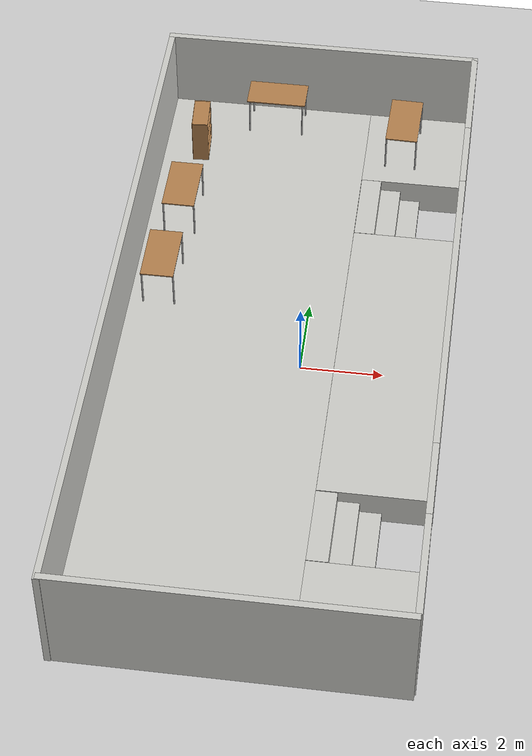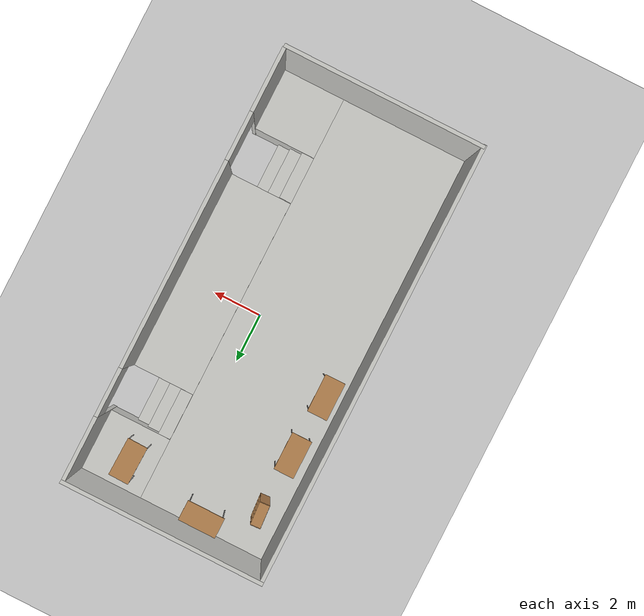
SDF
<sdf version="1.7">
 <world name="default">
  <model name="ground_plane">
   <static>1</static>
   <link name="link">
    <collision name="collision">
     <geometry><plane><normal>0 0 1</normal><size>100 100</size></plane></geometry>
     <surface>
      <contact><collide_bitmask>65535</collide_bitmask></contact>
      <friction><ode><mu>100</mu><mu2>50</mu2></ode></friction>
     </surface>
    </collision>
    <visual name="visual">
     <cast_shadows>0</cast_shadows>
     <geometry><plane><normal>0 0 1</normal><size>100 100</size></plane></geometry>
     <material>
      <script><uri>file://media/materials/scripts/gazebo.material</uri><name>Gazebo/Grey</name></script>
     </material>
    </visual>
   </link>
  </model>
  <model name="big_lab_final">
   <pose>-0.447877 -0.273393 0 0 -0 0</pose>
   <link name="Stairs_1">
    <visual name="Stairs_1_Visual_0">
     <pose>2.56912 -5.01602 0.15 0 -0 -1.5708</pose>
     <geometry><box><size>1.91 0.5 0.3</size></box></geometry>
     <material>
      <script><uri>file://media/materials/scripts/gazebo.material</uri><name>Gazebo/CeilingTiled</name></script>
      <ambient>0.333333 0.341176 0.32549 1</ambient>
     </material>
     <meta><layer>0</layer></meta>
    </visual>
    <collision name="Stairs_1_Collision_0">
     <geometry><box><size>1.91 0.5 0.3</size></box></geometry>
     <pose>2.56912 -5.01602 0.15 0 -0 -1.5708</pose>
    </collision>
    <visual name="Stairs_1_Visual_1">
     <pose>2.06912 -5.01602 0.45 0 -0 -1.5708</pose>
     <geometry><box><size>1.91 0.5 0.3</size></box></geometry>
     <material>
      <script><uri>file://media/materials/scripts/gazebo.material</uri><name>Gazebo/CeilingTiled</name></script>
      <ambient>0.333333 0.341176 0.32549 1</ambient>
     </material>
     <meta><layer>0</layer></meta>
    </visual>
    <collision name="Stairs_1_Collision_1">
     <geometry><box><size>1.91 0.5 0.3</size></box></geometry>
     <pose>2.06912 -5.01602 0.45 0 -0 -1.5708</pose>
    </collision>
    <visual name="Stairs_1_Visual_2">
     <pose>1.56912 -5.01602 0.75 0 -0 -1.5708</pose>
     <geometry><box><size>1.91 0.5 0.3</size></box></geometry>
     <material>
      <script><uri>file://media/materials/scripts/gazebo.material</uri><name>Gazebo/CeilingTiled</name></script>
      <ambient>0.333333 0.341176 0.32549 1</ambient>
     </material>
     <meta><layer>0</layer></meta>
    </visual>
    <collision name="Stairs_1_Collision_2">
     <geometry><box><size>1.91 0.5 0.3</size></box></geometry>
     <pose>1.56912 -5.01602 0.75 0 -0 -1.5708</pose>
    </collision>
   </link>
   <link name="Stairs_3">
    <visual name="Stairs_3_Visual_0">
     <pose>2.58039 5.06228 0.15 0 0 -1.5708</pose>
     <geometry><box><size>1.91 0.5 0.3</size></box></geometry>
     <material>
      <script><uri>file://media/materials/scripts/gazebo.material</uri><name>Gazebo/CeilingTiled</name></script>
      <ambient>0.333333 0.341176 0.32549 1</ambient>
     </material>
     <meta><layer>0</layer></meta>
    </visual>
    <collision name="Stairs_3_Collision_0">
     <geometry><box><size>1.91 0.5 0.3</size></box></geometry>
     <pose>2.58039 5.06228 0.15 0 0 -1.5708</pose>
    </collision>
    <visual name="Stairs_3_Visual_1">
     <pose>2.08039 5.06228 0.45 0 0 -1.5708</pose>
     <geometry><box><size>1.91 0.5 0.3</size></box></geometry>
     <material>
      <script><uri>file://media/materials/scripts/gazebo.material</uri><name>Gazebo/CeilingTiled</name></script>
      <ambient>0.333333 0.341176 0.32549 1</ambient>
     </material>
     <meta><layer>0</layer></meta>
    </visual>
    <collision name="Stairs_3_Collision_1">
     <geometry><box><size>1.91 0.5 0.3</size></box></geometry>
     <pose>2.08039 5.06228 0.45 0 0 -1.5708</pose>
    </collision>
    <visual name="Stairs_3_Visual_2">
     <pose>1.58039 5.06228 0.75 0 0 -1.5708</pose>
     <geometry><box><size>1.91 0.5 0.3</size></box></geometry>
     <material>
      <script><uri>file://media/materials/scripts/gazebo.material</uri><name>Gazebo/CeilingTiled</name></script>
      <ambient>0.333333 0.341176 0.32549 1</ambient>
     </material>
     <meta><layer>0</layer></meta>
    </visual>
    <collision name="Stairs_3_Collision_2">
     <geometry><box><size>1.91 0.5 0.3</size></box></geometry>
     <pose>1.58039 5.06228 0.75 0 0 -1.5708</pose>
    </collision>
   </link>
   <link name="Wall_0">
    <collision name="Wall_0_Collision">
     <geometry><box><size>17 5.15 0.9</size></box></geometry>
     <pose>0 0 0.45 0 -0 0</pose>
    </collision>
    <visual name="Wall_0_Visual">
     <pose>0 0 0.45 0 -0 0</pose>
     <geometry><box><size>17 5.15 0.9</size></box></geometry>
     <material>
      <script><uri>file://media/materials/scripts/gazebo.material</uri><name>Gazebo/CeilingTiled</name></script>
      <ambient>0.333333 0.341176 0.32549 1</ambient>
     </material>
     <meta><layer>0</layer></meta>
    </visual>
    <pose>-1.2516 0.017055 0 0 -0 -1.5708</pose>
   </link>
   <link name="Wall_11">
    <collision name="Wall_11_Collision">
     <geometry><box><size>7.875 0.15 3</size></box></geometry>
     <pose>0 0 1.5 0 -0 0</pose>
    </collision>
    <visual name="Wall_11_Visual">
     <pose>0 0 1.5 0 -0 0</pose>
     <geometry><box><size>7.875 0.15 3</size></box></geometry>
     <material>
      <script><uri>file://media/materials/scripts/gazebo.material</uri><name>Gazebo/CeilingTiled</name></script>
      <ambient>1 1 1 1</ambient>
     </material>
     <meta><layer>0</layer></meta>
    </visual>
    <pose>0.0055 -8.555 0 0 -0 0</pose>
   </link>
   <link name="Wall_13">
    <collision name="Wall_13_Collision">
     <geometry><box><size>7.95 0.15 3</size></box></geometry>
     <pose>0 0 1.5 0 -0 0</pose>
    </collision>
    <visual name="Wall_13_Visual">
     <pose>0 0 1.5 0 -0 0</pose>
     <geometry><box><size>7.95 0.15 3</size></box></geometry>
     <material>
      <script><uri>file://media/materials/scripts/gazebo.material</uri><name>Gazebo/CeilingTiled</name></script>
      <ambient>1 1 1 1</ambient>
     </material>
     <meta><layer>0</layer></meta>
    </visual>
    <pose>0 8.568 0 0 -0 3.14159</pose>
   </link>
   <link name="Wall_16">
    <collision name="Wall_16_Collision">
     <geometry><box><size>17.15 0.15 3</size></box></geometry>
     <pose>0 0 1.5 0 -0 0</pose>
    </collision>
    <visual name="Wall_16_Visual">
     <pose>0 0 1.5 0 -0 0</pose>
     <geometry><box><size>17.15 0.15 3</size></box></geometry>
     <material>
      <script><uri>file://media/materials/scripts/gazebo.material</uri><name>Gazebo/CeilingTiled</name></script>
      <ambient>1 1 1 1</ambient>
     </material>
     <meta><layer>0</layer></meta>
    </visual>
    <pose>-3.896 -0.07 0 0 -0 1.5708</pose>
   </link>
   <link name="Wall_18">
    <pose>3.898 0.07 0 0 -0 -1.5708</pose>
    <visual name="Wall_18_Visual_0">
     <pose>-7.25268 0 1.5 0 -0 0</pose>
     <geometry><box><size>2.64463 0.15 3</size></box></geometry>
     <material>
      <script><uri>file://media/materials/scripts/gazebo.material</uri><name>Gazebo/CeilingTiled</name></script>
      <ambient>1 1 1 1</ambient>
     </material>
     <meta><layer>0</layer></meta>
    </visual>
    <collision name="Wall_18_Collision_0">
     <geometry><box><size>2.64463 0.15 3</size></box></geometry>
     <pose>-7.25268 0 1.5 0 -0 0</pose>
    </collision>
    <visual name="Wall_18_Visual_1">
     <pose>0.054632 0 1.5 0 -0 0</pose>
     <geometry><box><size>8.15 0.15 3</size></box></geometry>
     <material>
      <script><uri>file://media/materials/scripts/gazebo.material</uri><name>Gazebo/CeilingTiled</name></script>
      <ambient>1 1 1 1</ambient>
     </material>
     <meta><layer>0</layer></meta>
    </visual>
    <collision name="Wall_18_Collision_1">
     <geometry><box><size>8.15 0.15 3</size></box></geometry>
     <pose>0.054632 0 1.5 0 -0 0</pose>
    </collision>
    <visual name="Wall_18_Visual_2">
     <pose>7.30732 0 1.5 0 -0 0</pose>
     <geometry><box><size>2.53537 0.15 3</size></box></geometry>
     <material>
      <script><uri>file://media/materials/scripts/gazebo.material</uri><name>Gazebo/CeilingTiled</name></script>
      <ambient>1 1 1 1</ambient>
     </material>
     <meta><layer>0</layer></meta>
    </visual>
    <collision name="Wall_18_Collision_2">
     <geometry><box><size>2.53537 0.15 3</size></box></geometry>
     <pose>7.30732 0 1.5 0 -0 0</pose>
    </collision>
    <visual name="Wall_18_Visual_3">
     <pose>-4.97537 0 2.5 0 -0 0</pose>
     <geometry><box><size>1.91 0.15 1</size></box></geometry>
     <material>
      <script><uri>file://media/materials/scripts/gazebo.material</uri><name>Gazebo/CeilingTiled</name></script>
      <ambient>1 1 1 1</ambient>
     </material>
     <meta><layer>0</layer></meta>
    </visual>
    <collision name="Wall_18_Collision_3">
     <geometry><box><size>1.91 0.15 1</size></box></geometry>
     <pose>-4.97537 0 2.5 0 -0 0</pose>
    </collision>
    <visual name="Wall_18_Visual_4">
     <pose>5.08463 0 2.5 0 -0 0</pose>
     <geometry><box><size>1.91 0.15 1</size></box></geometry>
     <material>
      <script><uri>file://media/materials/scripts/gazebo.material</uri><name>Gazebo/CeilingTiled</name></script>
      <ambient>1 1 1 1</ambient>
     </material>
     <meta><layer>0</layer></meta>
    </visual>
    <collision name="Wall_18_Collision_4">
     <geometry><box><size>1.91 0.15 1</size></box></geometry>
     <pose>5.08463 0 2.5 0 -0 0</pose>
    </collision>
   </link>
   <link name="Wall_2">
    <collision name="Wall_2_Collision">
     <geometry><box><size>2.51 2.5 0.9</size></box></geometry>
     <pose>0 0 0.45 0 -0 0</pose>
    </collision>
    <visual name="Wall_2_Visual">
     <pose>0 0 0.45 0 -0 0</pose>
     <geometry><box><size>2.51 2.5 0.9</size></box></geometry>
     <material>
      <script><uri>file://media/materials/scripts/gazebo.material</uri><name>Gazebo/CeilingTiled</name></script>
      <ambient>0.333333 0.341176 0.32549 1</ambient>
     </material>
     <meta><layer>0</layer></meta>
    </visual>
    <pose>2.575 -7.23 0 0 -0 0</pose>
   </link>
   <link name="Wall_4">
    <collision name="Wall_4_Collision">
     <geometry><box><size>2.51 2.5 0.9</size></box></geometry>
     <pose>0 0 0.45 0 -0 0</pose>
    </collision>
    <visual name="Wall_4_Visual">
     <pose>0 0 0.45 0 -0 0</pose>
     <geometry><box><size>2.51 2.5 0.9</size></box></geometry>
     <material>
      <script><uri>file://media/materials/scripts/gazebo.material</uri><name>Gazebo/CeilingTiled</name></script>
      <ambient>0.333333 0.341176 0.32549 1</ambient>
     </material>
     <meta><layer>0</layer></meta>
    </visual>
    <pose>2.573 7.2685 0 0 -0 3.14159</pose>
   </link>
   <link name="Wall_7">
    <collision name="Wall_7_Collision">
     <geometry><box><size>8.145 2.5 0.9</size></box></geometry>
     <pose>0 0 0.45 0 -0 0</pose>
    </collision>
    <visual name="Wall_7_Visual">
     <pose>0 0 0.45 0 -0 0</pose>
     <geometry><box><size>8.145 2.5 0.9</size></box></geometry>
     <material>
      <script><uri>file://media/materials/scripts/gazebo.material</uri><name>Gazebo/CeilingTiled</name></script>
      <ambient>0.333333 0.341176 0.32549 1</ambient>
     </material>
     <meta><layer>0</layer></meta>
    </visual>
    <pose>2.57459 0.029666 0 0 -0 -1.5708</pose>
   </link>
   <static>1</static>
  </model>
  <model name="table_0">
   <static>1</static>
   <link name="link">
    <collision name="surface">
     <pose>0 0 1 0 -0 0</pose>
     <geometry><box><size>1.5 0.8 0.03</size></box></geometry>
     <surface><friction><ode><mu>0.6</mu><mu2>0.6</mu2></ode></friction></surface>
    </collision>
    <visual name="visual1">
     <pose>0 0 1 0 -0 0</pose>
     <geometry><box><size>1.5 0.8 0.03</size></box></geometry>
     <material>
      <script><uri>file://media/materials/scripts/gazebo.material</uri><name>Gazebo/Wood</name></script>
     </material>
    </visual>
    <collision name="front_left_leg">
     <pose>0.68 0.38 0.5 0 -0 0</pose>
     <geometry><cylinder><radius>0.02</radius><length>1</length></cylinder></geometry>
    </collision>
    <visual name="front_left_leg">
     <pose>0.68 0.38 0.5 0 -0 0</pose>
     <geometry><cylinder><radius>0.02</radius><length>1</length></cylinder></geometry>
     <material>
      <script><uri>file://media/materials/scripts/gazebo.material</uri><name>Gazebo/Grey</name></script>
     </material>
    </visual>
    <collision name="front_right_leg">
     <pose>0.68 -0.38 0.5 0 -0 0</pose>
     <geometry><cylinder><radius>0.02</radius><length>1</length></cylinder></geometry>
    </collision>
    <visual name="front_right_leg">
     <pose>0.68 -0.38 0.5 0 -0 0</pose>
     <geometry><cylinder><radius>0.02</radius><length>1</length></cylinder></geometry>
     <material>
      <script><uri>file://media/materials/scripts/gazebo.material</uri><name>Gazebo/Grey</name></script>
     </material>
    </visual>
    <collision name="back_right_leg">
     <pose>-0.68 -0.38 0.5 0 -0 0</pose>
     <geometry><cylinder><radius>0.02</radius><length>1</length></cylinder></geometry>
    </collision>
    <visual name="back_right_leg">
     <pose>-0.68 -0.38 0.5 0 -0 0</pose>
     <geometry><cylinder><radius>0.02</radius><length>1</length></cylinder></geometry>
     <material>
      <script><uri>file://media/materials/scripts/gazebo.material</uri><name>Gazebo/Grey</name></script>
     </material>
    </visual>
    <collision name="back_left_leg">
     <pose>-0.68 0.38 0.5 0 -0 0</pose>
     <geometry><cylinder><radius>0.02</radius><length>1</length></cylinder></geometry>
    </collision>
    <visual name="back_left_leg">
     <pose>-0.68 0.38 0.5 0 -0 0</pose>
     <geometry><cylinder><radius>0.02</radius><length>1</length></cylinder></geometry>
     <material>
      <script><uri>file://media/materials/scripts/gazebo.material</uri><name>Gazebo/Grey</name></script>
     </material>
    </visual>
   </link>
   <pose>-1.51461 7.56506 0.938554 0 -0 0</pose>
  </model>
  <model name="table_1">
   <static>1</static>
   <link name="link">
    <collision name="surface">
     <pose>0 0 1 0 -0 0</pose>
     <geometry><box><size>1.5 0.8 0.03</size></box></geometry>
     <surface><friction><ode><mu>0.6</mu><mu2>0.6</mu2></ode></friction></surface>
    </collision>
    <visual name="visual1">
     <pose>0 0 1 0 -0 0</pose>
     <geometry><box><size>1.5 0.8 0.03</size></box></geometry>
     <material>
      <script><uri>file://media/materials/scripts/gazebo.material</uri><name>Gazebo/Wood</name></script>
     </material>
    </visual>
    <collision name="front_left_leg">
     <pose>0.68 0.38 0.5 0 -0 0</pose>
     <geometry><cylinder><radius>0.02</radius><length>1</length></cylinder></geometry>
    </collision>
    <visual name="front_left_leg">
     <pose>0.68 0.38 0.5 0 -0 0</pose>
     <geometry><cylinder><radius>0.02</radius><length>1</length></cylinder></geometry>
     <material>
      <script><uri>file://media/materials/scripts/gazebo.material</uri><name>Gazebo/Grey</name></script>
     </material>
    </visual>
    <collision name="front_right_leg">
     <pose>0.68 -0.38 0.5 0 -0 0</pose>
     <geometry><cylinder><radius>0.02</radius><length>1</length></cylinder></geometry>
    </collision>
    <visual name="front_right_leg">
     <pose>0.68 -0.38 0.5 0 -0 0</pose>
     <geometry><cylinder><radius>0.02</radius><length>1</length></cylinder></geometry>
     <material>
      <script><uri>file://media/materials/scripts/gazebo.material</uri><name>Gazebo/Grey</name></script>
     </material>
    </visual>
    <collision name="back_right_leg">
     <pose>-0.68 -0.38 0.5 0 -0 0</pose>
     <geometry><cylinder><radius>0.02</radius><length>1</length></cylinder></geometry>
    </collision>
    <visual name="back_right_leg">
     <pose>-0.68 -0.38 0.5 0 -0 0</pose>
     <geometry><cylinder><radius>0.02</radius><length>1</length></cylinder></geometry>
     <material>
      <script><uri>file://media/materials/scripts/gazebo.material</uri><name>Gazebo/Grey</name></script>
     </material>
    </visual>
    <collision name="back_left_leg">
     <pose>-0.68 0.38 0.5 0 -0 0</pose>
     <geometry><cylinder><radius>0.02</radius><length>1</length></cylinder></geometry>
    </collision>
    <visual name="back_left_leg">
     <pose>-0.68 0.38 0.5 0 -0 0</pose>
     <geometry><cylinder><radius>0.02</radius><length>1</length></cylinder></geometry>
     <material>
      <script><uri>file://media/materials/scripts/gazebo.material</uri><name>Gazebo/Grey</name></script>
     </material>
    </visual>
   </link>
   <pose>-3.43018 3.98699 0.900017 0 -0 1.5681</pose>
  </model>
  <model name="table_2">
   <static>1</static>
   <link name="link">
    <collision name="surface">
     <pose>0 0 1 0 -0 0</pose>
     <geometry><box><size>1.5 0.8 0.03</size></box></geometry>
     <surface><friction><ode><mu>0.6</mu><mu2>0.6</mu2></ode></friction></surface>
    </collision>
    <visual name="visual1">
     <pose>0 0 1 0 -0 0</pose>
     <geometry><box><size>1.5 0.8 0.03</size></box></geometry>
     <material>
      <script><uri>file://media/materials/scripts/gazebo.material</uri><name>Gazebo/Wood</name></script>
     </material>
    </visual>
    <collision name="front_left_leg">
     <pose>0.68 0.38 0.5 0 -0 0</pose>
     <geometry><cylinder><radius>0.02</radius><length>1</length></cylinder></geometry>
    </collision>
    <visual name="front_left_leg">
     <pose>0.68 0.38 0.5 0 -0 0</pose>
     <geometry><cylinder><radius>0.02</radius><length>1</length></cylinder></geometry>
     <material>
      <script><uri>file://media/materials/scripts/gazebo.material</uri><name>Gazebo/Grey</name></script>
     </material>
    </visual>
    <collision name="front_right_leg">
     <pose>0.68 -0.38 0.5 0 -0 0</pose>
     <geometry><cylinder><radius>0.02</radius><length>1</length></cylinder></geometry>
    </collision>
    <visual name="front_right_leg">
     <pose>0.68 -0.38 0.5 0 -0 0</pose>
     <geometry><cylinder><radius>0.02</radius><length>1</length></cylinder></geometry>
     <material>
      <script><uri>file://media/materials/scripts/gazebo.material</uri><name>Gazebo/Grey</name></script>
     </material>
    </visual>
    <collision name="back_right_leg">
     <pose>-0.68 -0.38 0.5 0 -0 0</pose>
     <geometry><cylinder><radius>0.02</radius><length>1</length></cylinder></geometry>
    </collision>
    <visual name="back_right_leg">
     <pose>-0.68 -0.38 0.5 0 -0 0</pose>
     <geometry><cylinder><radius>0.02</radius><length>1</length></cylinder></geometry>
     <material>
      <script><uri>file://media/materials/scripts/gazebo.material</uri><name>Gazebo/Grey</name></script>
     </material>
    </visual>
    <collision name="back_left_leg">
     <pose>-0.68 0.38 0.5 0 -0 0</pose>
     <geometry><cylinder><radius>0.02</radius><length>1</length></cylinder></geometry>
    </collision>
    <visual name="back_left_leg">
     <pose>-0.68 0.38 0.5 0 -0 0</pose>
     <geometry><cylinder><radius>0.02</radius><length>1</length></cylinder></geometry>
     <material>
      <script><uri>file://media/materials/scripts/gazebo.material</uri><name>Gazebo/Grey</name></script>
     </material>
    </visual>
   </link>
   <pose>-3.55045 1.5471 0.909852 0 -0 1.57379</pose>
  </model>
  <model name="table_5">
   <static>1</static>
   <link name="link">
    <collision name="surface">
     <pose>0 0 1 0 -0 0</pose>
     <geometry><box><size>1.5 0.8 0.03</size></box></geometry>
     <surface><friction><ode><mu>0.6</mu><mu2>0.6</mu2></ode></friction></surface>
    </collision>
    <visual name="visual1">
     <pose>0 0 1 0 -0 0</pose>
     <geometry><box><size>1.5 0.8 0.03</size></box></geometry>
     <material>
      <script><uri>file://media/materials/scripts/gazebo.material</uri><name>Gazebo/Wood</name></script>
     </material>
    </visual>
    <collision name="front_left_leg">
     <pose>0.68 0.38 0.5 0 -0 0</pose>
     <geometry><cylinder><radius>0.02</radius><length>1</length></cylinder></geometry>
    </collision>
    <visual name="front_left_leg">
     <pose>0.68 0.38 0.5 0 -0 0</pose>
     <geometry><cylinder><radius>0.02</radius><length>1</length></cylinder></geometry>
     <material>
      <script><uri>file://media/materials/scripts/gazebo.material</uri><name>Gazebo/Grey</name></script>
     </material>
    </visual>
    <collision name="front_right_leg">
     <pose>0.68 -0.38 0.5 0 -0 0</pose>
     <geometry><cylinder><radius>0.02</radius><length>1</length></cylinder></geometry>
    </collision>
    <visual name="front_right_leg">
     <pose>0.68 -0.38 0.5 0 -0 0</pose>
     <geometry><cylinder><radius>0.02</radius><length>1</length></cylinder></geometry>
     <material>
      <script><uri>file://media/materials/scripts/gazebo.material</uri><name>Gazebo/Grey</name></script>
     </material>
    </visual>
    <collision name="back_right_leg">
     <pose>-0.68 -0.38 0.5 0 -0 0</pose>
     <geometry><cylinder><radius>0.02</radius><length>1</length></cylinder></geometry>
    </collision>
    <visual name="back_right_leg">
     <pose>-0.68 -0.38 0.5 0 -0 0</pose>
     <geometry><cylinder><radius>0.02</radius><length>1</length></cylinder></geometry>
     <material>
      <script><uri>file://media/materials/scripts/gazebo.material</uri><name>Gazebo/Grey</name></script>
     </material>
    </visual>
    <collision name="back_left_leg">
     <pose>-0.68 0.38 0.5 0 -0 0</pose>
     <geometry><cylinder><radius>0.02</radius><length>1</length></cylinder></geometry>
    </collision>
    <visual name="back_left_leg">
     <pose>-0.68 0.38 0.5 0 -0 0</pose>
     <geometry><cylinder><radius>0.02</radius><length>1</length></cylinder></geometry>
     <material>
      <script><uri>file://media/materials/scripts/gazebo.material</uri><name>Gazebo/Grey</name></script>
     </material>
    </visual>
   </link>
   <pose>1.82443 6.88155 1.00192 0 0 -1.59504</pose>
  </model>
  <model name="bookshelf_0">
   <static>1</static>
   <link name="link">
    <inertial><mass>1</mass></inertial>
    <collision name="back">
     <pose>0 0.005 0.6 0 -0 0</pose>
     <geometry><box><size>0.9 0.01 1.2</size></box></geometry>
    </collision>
    <visual name="visual1">
     <pose>0 0.005 0.6 0 -0 0</pose>
     <geometry><box><size>0.9 0.01 1.2</size></box></geometry>
     <material>
      <script><uri>file://media/materials/scripts/gazebo.material</uri><name>Gazebo/Wood</name></script>
     </material>
    </visual>
    <collision name="left_side">
     <pose>0.45 -0.195 0.6 0 -0 0</pose>
     <geometry><box><size>0.02 0.4 1.2</size></box></geometry>
    </collision>
    <visual name="visual2">
     <pose>0.45 -0.195 0.6 0 -0 0</pose>
     <geometry><box><size>0.02 0.4 1.2</size></box></geometry>
     <material>
      <script><uri>file://media/materials/scripts/gazebo.material</uri><name>Gazebo/Wood</name></script>
     </material>
    </visual>
    <collision name="right_side">
     <pose>-0.45 -0.195 0.6 0 -0 0</pose>
     <geometry><box><size>0.02 0.4 1.2</size></box></geometry>
    </collision>
    <visual name="visual3">
     <pose>-0.45 -0.195 0.6 0 -0 0</pose>
     <geometry><box><size>0.02 0.4 1.2</size></box></geometry>
     <material>
      <script><uri>file://media/materials/scripts/gazebo.material</uri><name>Gazebo/Wood</name></script>
     </material>
    </visual>
    <collision name="bottom">
     <pose>0 -0.195 0.03 0 -0 0</pose>
     <geometry><box><size>0.88 0.4 0.06</size></box></geometry>
    </collision>
    <visual name="visual4">
     <pose>0 -0.195 0.03 0 -0 0</pose>
     <geometry><box><size>0.88 0.4 0.06</size></box></geometry>
     <material>
      <script><uri>file://media/materials/scripts/gazebo.material</uri><name>Gazebo/Wood</name></script>
     </material>
    </visual>
    <collision name="top">
     <pose>0 -0.195 1.19 0 -0 0</pose>
     <geometry><box><size>0.88 0.4 0.02</size></box></geometry>
    </collision>
    <visual name="visual5">
     <pose>0 -0.195 1.19 0 -0 0</pose>
     <geometry><box><size>0.88 0.4 0.02</size></box></geometry>
     <material>
      <script><uri>file://media/materials/scripts/gazebo.material</uri><name>Gazebo/Wood</name></script>
     </material>
    </visual>
    <collision name="low_shelf">
     <pose>0 -0.195 0.43 0 -0 0</pose>
     <geometry><box><size>0.88 0.4 0.02</size></box></geometry>
    </collision>
    <visual name="visual6">
     <pose>0 -0.195 0.43 0 -0 0</pose>
     <geometry><box><size>0.88 0.4 0.02</size></box></geometry>
     <material>
      <script><uri>file://media/materials/scripts/gazebo.material</uri><name>Gazebo/Wood</name></script>
     </material>
    </visual>
    <collision name="high_shelf">
     <pose>0 -0.195 0.8 0 -0 0</pose>
     <geometry><box><size>0.88 0.4 0.02</size></box></geometry>
    </collision>
    <visual name="visual7">
     <pose>0 -0.195 0.8 0 -0 0</pose>
     <geometry><box><size>0.88 0.4 0.02</size></box></geometry>
     <material>
      <script><uri>file://media/materials/scripts/gazebo.material</uri><name>Gazebo/Wood</name></script>
     </material>
    </visual>
   </link>
   <pose>-3.52968 6.40981 0.896349 0 -0 1.63579</pose>
  </model>
 </world>
</sdf>
